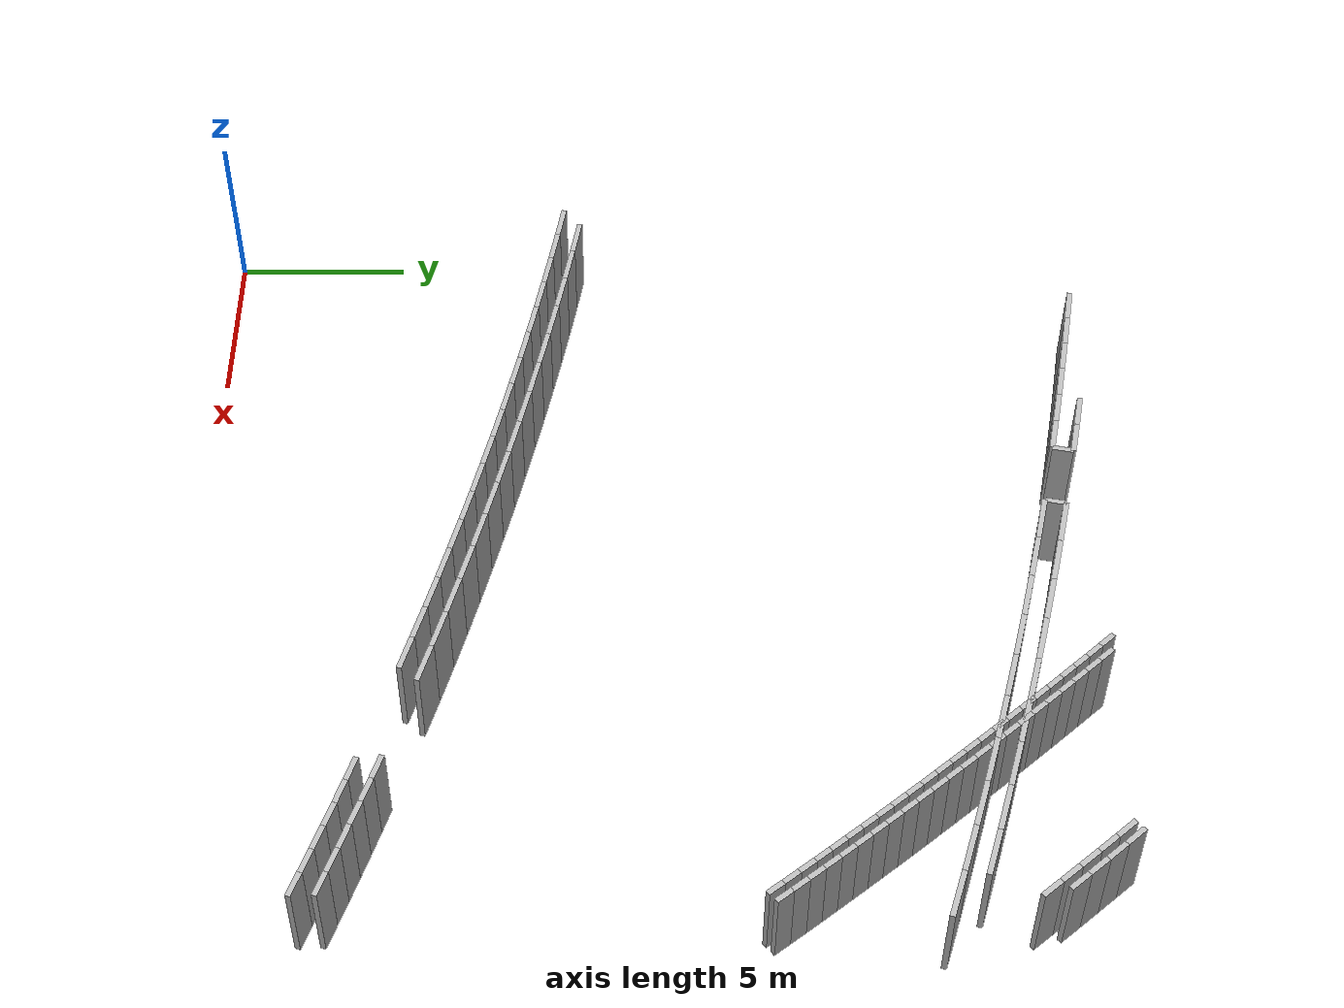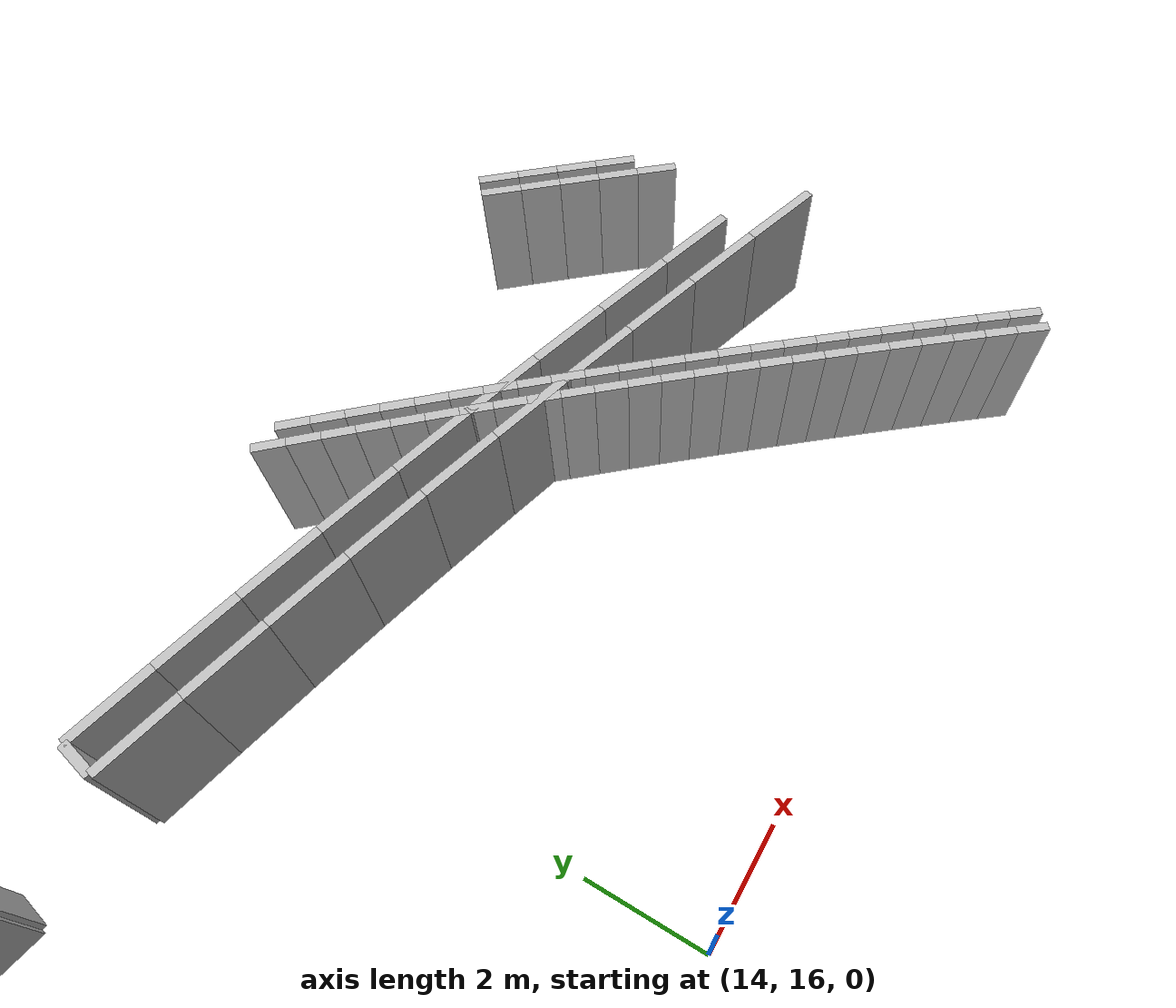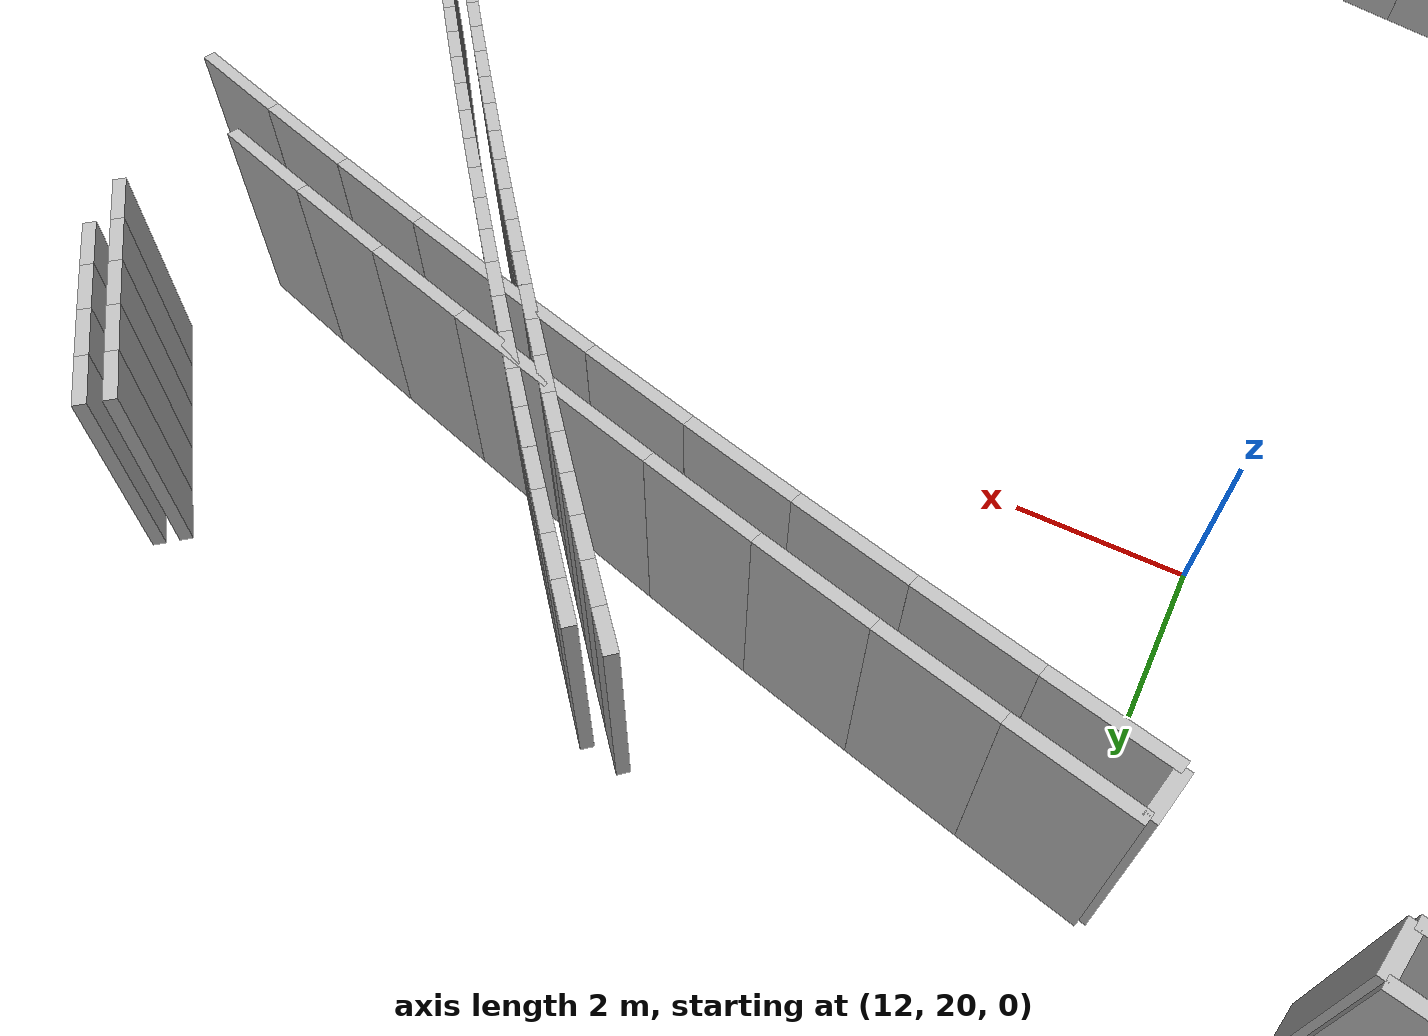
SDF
<sdf version="1.6">
 <model name="sps_0506">
  <static>1</static>
  <allow_auto_disable>0</allow_auto_disable>
  <link name="Wall817">
   <collision name="collision"><geometry><box><size>0.599651 0.15 2.5</size></box></geometry></collision>
   <visual name="visual">
    <geometry><box><size>0.599651 0.15 2.5</size></box></geometry>
    <transparency>0.0</transparency>
   </visual>
   <pose>11.689 24.0409 1.25 0 0 -1.78121</pose>
  </link>
  <link name="Wall1526">
   <collision name="collision"><geometry><box><size>0.600265 0.15 2.5</size></box></geometry></collision>
   <visual name="visual">
    <geometry><box><size>0.600265 0.15 2.5</size></box></geometry>
    <transparency>0.0</transparency>
   </visual>
   <pose>9.73165 24.4502 1.25 0 -0 1.35998</pose>
  </link>
  <link name="Wall6796">
   <collision name="collision"><geometry><box><size>1.19247 0.15 2.5</size></box></geometry></collision>
   <visual name="visual">
    <geometry><box><size>1.19247 0.15 2.5</size></box></geometry>
    <transparency>0.0</transparency>
   </visual>
   <pose>17.3373 6.8047 1.25 0 -0 2.8591</pose>
  </link>
  <link name="Wall6797">
   <collision name="collision"><geometry><box><size>1.19253 0.15 2.5</size></box></geometry></collision>
   <visual name="visual">
    <geometry><box><size>1.19253 0.15 2.5</size></box></geometry>
    <transparency>0.0</transparency>
   </visual>
   <pose>16.1907 7.13231 1.25 0 -0 2.86748</pose>
  </link>
  <link name="Wall6798">
   <collision name="collision"><geometry><box><size>1.19267 0.15 2.5</size></box></geometry></collision>
   <visual name="visual">
    <geometry><box><size>1.19267 0.15 2.5</size></box></geometry>
    <transparency>0.0</transparency>
   </visual>
   <pose>15.0413 7.4503 1.25 0 -0 2.8759</pose>
  </link>
  <link name="Wall6799">
   <collision name="collision"><geometry><box><size>1.19249 0.15 2.5</size></box></geometry></collision>
   <visual name="visual">
    <geometry><box><size>1.19249 0.15 2.5</size></box></geometry>
    <transparency>0.0</transparency>
   </visual>
   <pose>13.8892 7.75868 1.25 0 -0 2.88418</pose>
  </link>
  <link name="Wall6800">
   <collision name="collision"><geometry><box><size>1.19276 0.15 2.5</size></box></geometry></collision>
   <visual name="visual">
    <geometry><box><size>1.19276 0.15 2.5</size></box></geometry>
    <transparency>0.0</transparency>
   </visual>
   <pose>12.7346 8.05739 1.25 0 -0 2.89269</pose>
  </link>
  <link name="Wall6801">
   <collision name="collision"><geometry><box><size>1.19256 0.15 2.5</size></box></geometry></collision>
   <visual name="visual">
    <geometry><box><size>1.19256 0.15 2.5</size></box></geometry>
    <transparency>0.0</transparency>
   </visual>
   <pose>11.5775 8.34639 1.25 0 -0 2.90098</pose>
  </link>
  <link name="Wall6802">
   <collision name="collision"><geometry><box><size>1.19258 0.15 2.5</size></box></geometry></collision>
   <visual name="visual">
    <geometry><box><size>1.19258 0.15 2.5</size></box></geometry>
    <transparency>0.0</transparency>
   </visual>
   <pose>10.4181 8.62569 1.25 0 -0 2.90941</pose>
  </link>
  <link name="Wall6803">
   <collision name="collision"><geometry><box><size>1.1925 0.15 2.5</size></box></geometry></collision>
   <visual name="visual">
    <geometry><box><size>1.1925 0.15 2.5</size></box></geometry>
    <transparency>0.0</transparency>
   </visual>
   <pose>9.25646 8.89519 1.25 0 -0 2.91786</pose>
  </link>
  <link name="Wall6804">
   <collision name="collision"><geometry><box><size>1.19262 0.15 2.5</size></box></geometry></collision>
   <visual name="visual">
    <geometry><box><size>1.19262 0.15 2.5</size></box></geometry>
    <transparency>0.0</transparency>
   </visual>
   <pose>8.09255 9.15498 1.25 0 -0 2.92611</pose>
  </link>
  <link name="Wall6805">
   <collision name="collision"><geometry><box><size>1.19252 0.15 2.5</size></box></geometry></collision>
   <visual name="visual">
    <geometry><box><size>1.19252 0.15 2.5</size></box></geometry>
    <transparency>0.0</transparency>
   </visual>
   <pose>6.92654 9.4052 1.25 0 -0 2.93431</pose>
  </link>
  <link name="Wall6806">
   <collision name="collision"><geometry><box><size>1.19265 0.15 2.5</size></box></geometry></collision>
   <visual name="visual">
    <geometry><box><size>1.19265 0.15 2.5</size></box></geometry>
    <transparency>0.0</transparency>
   </visual>
   <pose>5.75845 9.64561 1.25 0 -0 2.9429</pose>
  </link>
  <link name="Wall6807">
   <collision name="collision"><geometry><box><size>1.19259 0.15 2.5</size></box></geometry></collision>
   <visual name="visual">
    <geometry><box><size>1.19259 0.15 2.5</size></box></geometry>
    <transparency>0.0</transparency>
   </visual>
   <pose>4.58834 9.8762 1.25 0 -0 2.95113</pose>
  </link>
  <link name="Wall6808">
   <collision name="collision"><geometry><box><size>1.19266 0.15 2.5</size></box></geometry></collision>
   <visual name="visual">
    <geometry><box><size>1.19266 0.15 2.5</size></box></geometry>
    <transparency>0.0</transparency>
   </visual>
   <pose>3.41634 10.097 1.25 0 -0 2.95963</pose>
  </link>
  <link name="Wall6809">
   <collision name="collision"><geometry><box><size>1.19252 0.15 2.5</size></box></geometry></collision>
   <visual name="visual">
    <geometry><box><size>1.19252 0.15 2.5</size></box></geometry>
    <transparency>0.0</transparency>
   </visual>
   <pose>2.24255 10.3078 1.25 0 -0 2.96814</pose>
  </link>
  <link name="Wall6810">
   <collision name="collision"><geometry><box><size>1.19264 0.15 2.5</size></box></geometry></collision>
   <visual name="visual">
    <geometry><box><size>1.19264 0.15 2.5</size></box></geometry>
    <transparency>0.0</transparency>
   </visual>
   <pose>1.06704 10.5088 1.25 0 -0 2.97636</pose>
  </link>
  <link name="Wall7026">
   <collision name="collision"><geometry><box><size>0.737285 0.15 2.5</size></box></geometry></collision>
   <visual name="visual">
    <geometry><box><size>0.737285 0.15 2.5</size></box></geometry>
    <transparency>0.0</transparency>
   </visual>
   <pose>24.1517 4.6357 1.25 0 -0 2.80882</pose>
  </link>
  <link name="Wall7027">
   <collision name="collision"><geometry><box><size>0.737195 0.15 2.5</size></box></geometry></collision>
   <visual name="visual">
    <geometry><box><size>0.737195 0.15 2.5</size></box></geometry>
    <transparency>0.0</transparency>
   </visual>
   <pose>23.4542 4.87471 1.25 0 -0 2.81403</pose>
  </link>
  <link name="Wall7028">
   <collision name="collision"><geometry><box><size>0.737202 0.15 2.5</size></box></geometry></collision>
   <visual name="visual">
    <geometry><box><size>0.737202 0.15 2.5</size></box></geometry>
    <transparency>0.0</transparency>
   </visual>
   <pose>22.7556 5.11009 1.25 0 -0 2.81919</pose>
  </link>
  <link name="Wall7029">
   <collision name="collision"><geometry><box><size>0.737288 0.15 2.5</size></box></geometry></collision>
   <visual name="visual">
    <geometry><box><size>0.737288 0.15 2.5</size></box></geometry>
    <transparency>0.0</transparency>
   </visual>
   <pose>22.0557 5.34178 1.25 0 -0 2.82463</pose>
  </link>
  <link name="Wall7030">
   <collision name="collision"><geometry><box><size>0.73741 0.15 2.5</size></box></geometry></collision>
   <visual name="visual">
    <geometry><box><size>0.73741 0.15 2.5</size></box></geometry>
    <transparency>0.0</transparency>
   </visual>
   <pose>21.3546 5.5699 1.25 0 -0 2.82947</pose>
  </link>
  <link name="Wall7031">
   <collision name="collision"><geometry><box><size>0.737402 0.15 2.5</size></box></geometry></collision>
   <visual name="visual">
    <geometry><box><size>0.737402 0.15 2.5</size></box></geometry>
    <transparency>0.0</transparency>
   </visual>
   <pose>20.6522 5.79442 1.25 0 -0 2.83495</pose>
  </link>
  <link name="Wall9447">
   <collision name="collision"><geometry><box><size>1.03454 0.15 2.5</size></box></geometry></collision>
   <visual name="visual">
    <geometry><box><size>1.03454 0.15 2.5</size></box></geometry>
    <transparency>0.0</transparency>
   </visual>
   <pose>9.28735 24.8457 1.25 0 -0 2.94306</pose>
  </link>
  <link name="Wall9448">
   <collision name="collision"><geometry><box><size>1.03453 0.15 2.5</size></box></geometry></collision>
   <visual name="visual">
    <geometry><box><size>1.03453 0.15 2.5</size></box></geometry>
    <transparency>0.0</transparency>
   </visual>
   <pose>8.27245 25.0463 1.25 0 -0 2.9498</pose>
  </link>
  <link name="Wall9459">
   <collision name="collision"><geometry><box><size>1.06457 0.15 2.5</size></box></geometry></collision>
   <visual name="visual">
    <geometry><box><size>1.06457 0.15 2.5</size></box></geometry>
    <transparency>0.0</transparency>
   </visual>
   <pose>16.9885 6.29738 1.25 0 -0 2.86041</pose>
  </link>
  <link name="Wall9460">
   <collision name="collision"><geometry><box><size>1.06461 0.15 2.5</size></box></geometry></collision>
   <visual name="visual">
    <geometry><box><size>1.06461 0.15 2.5</size></box></geometry>
    <transparency>0.0</transparency>
   </visual>
   <pose>15.9646 6.58888 1.25 0 -0 2.86805</pose>
  </link>
  <link name="Wall9461">
   <collision name="collision"><geometry><box><size>1.06441 0.15 2.5</size></box></geometry></collision>
   <visual name="visual">
    <geometry><box><size>1.06441 0.15 2.5</size></box></geometry>
    <transparency>0.0</transparency>
   </visual>
   <pose>14.9386 6.87257 1.25 0 -0 2.87561</pose>
  </link>
  <link name="Wall9462">
   <collision name="collision"><geometry><box><size>1.06444 0.15 2.5</size></box></geometry></collision>
   <visual name="visual">
    <geometry><box><size>1.06444 0.15 2.5</size></box></geometry>
    <transparency>0.0</transparency>
   </visual>
   <pose>13.9106 7.14867 1.25 0 -0 2.8828</pose>
  </link>
  <link name="Wall9463">
   <collision name="collision"><geometry><box><size>1.06461 0.15 2.5</size></box></geometry></collision>
   <visual name="visual">
    <geometry><box><size>1.06461 0.15 2.5</size></box></geometry>
    <transparency>0.0</transparency>
   </visual>
   <pose>12.8805 7.41707 1.25 0 -0 2.89061</pose>
  </link>
  <link name="Wall9464">
   <collision name="collision"><geometry><box><size>1.06437 0.15 2.5</size></box></geometry></collision>
   <visual name="visual">
    <geometry><box><size>1.06437 0.15 2.5</size></box></geometry>
    <transparency>0.0</transparency>
   </visual>
   <pose>11.8483 7.6776 1.25 0 -0 2.89806</pose>
  </link>
  <link name="Wall9465">
   <collision name="collision"><geometry><box><size>1.06456 0.15 2.5</size></box></geometry></collision>
   <visual name="visual">
    <geometry><box><size>1.06456 0.15 2.5</size></box></geometry>
    <transparency>0.0</transparency>
   </visual>
   <pose>10.8144 7.9304 1.25 0 -0 2.90554</pose>
  </link>
  <link name="Wall9466">
   <collision name="collision"><geometry><box><size>1.06449 0.15 2.5</size></box></geometry></collision>
   <visual name="visual">
    <geometry><box><size>1.06449 0.15 2.5</size></box></geometry>
    <transparency>0.0</transparency>
   </visual>
   <pose>9.77843 8.17549 1.25 0 -0 2.91301</pose>
  </link>
  <link name="Wall9467">
   <collision name="collision"><geometry><box><size>1.06448 0.15 2.5</size></box></geometry></collision>
   <visual name="visual">
    <geometry><box><size>1.06448 0.15 2.5</size></box></geometry>
    <transparency>0.0</transparency>
   </visual>
   <pose>8.74074 8.41279 1.25 0 -0 2.92054</pose>
  </link>
  <link name="Wall9468">
   <collision name="collision"><geometry><box><size>1.06458 0.15 2.5</size></box></geometry></collision>
   <visual name="visual">
    <geometry><box><size>1.06458 0.15 2.5</size></box></geometry>
    <transparency>0.0</transparency>
   </visual>
   <pose>7.70126 8.64229 1.25 0 -0 2.92807</pose>
  </link>
  <link name="Wall9469">
   <collision name="collision"><geometry><box><size>1.06452 0.15 2.5</size></box></geometry></collision>
   <visual name="visual">
    <geometry><box><size>1.06452 0.15 2.5</size></box></geometry>
    <transparency>0.0</transparency>
   </visual>
   <pose>6.66006 8.864 1.25 0 -0 2.9355</pose>
  </link>
  <link name="Wall9470">
   <collision name="collision"><geometry><box><size>1.06449 0.15 2.5</size></box></geometry></collision>
   <visual name="visual">
    <geometry><box><size>1.06449 0.15 2.5</size></box></geometry>
    <transparency>0.0</transparency>
   </visual>
   <pose>5.61727 9.0779 1.25 0 -0 2.94305</pose>
  </link>
  <link name="Wall9471">
   <collision name="collision"><geometry><box><size>1.06461 0.15 2.5</size></box></geometry></collision>
   <visual name="visual">
    <geometry><box><size>1.06461 0.15 2.5</size></box></geometry>
    <transparency>0.0</transparency>
   </visual>
   <pose>4.57287 9.28398 1.25 0 -0 2.95049</pose>
  </link>
  <link name="Wall9472">
   <collision name="collision"><geometry><box><size>1.06444 0.15 2.5</size></box></geometry></collision>
   <visual name="visual">
    <geometry><box><size>1.06444 0.15 2.5</size></box></geometry>
    <transparency>0.0</transparency>
   </visual>
   <pose>3.52697 9.48219 1.25 0 -0 2.95811</pose>
  </link>
  <link name="Wall9473">
   <collision name="collision"><geometry><box><size>1.06448 0.15 2.5</size></box></geometry></collision>
   <visual name="visual">
    <geometry><box><size>1.06448 0.15 2.5</size></box></geometry>
    <transparency>0.0</transparency>
   </visual>
   <pose>2.47967 9.6725 1.25 0 -0 2.96558</pose>
  </link>
  <link name="Wall9474">
   <collision name="collision"><geometry><box><size>1.06447 0.15 2.5</size></box></geometry></collision>
   <visual name="visual">
    <geometry><box><size>1.06447 0.15 2.5</size></box></geometry>
    <transparency>0.0</transparency>
   </visual>
   <pose>1.43096 9.85499 1.25 0 -0 2.97302</pose>
  </link>
  <link name="Wall9475">
   <collision name="collision"><geometry><box><size>1.0646 0.15 2.5</size></box></geometry></collision>
   <visual name="visual">
    <geometry><box><size>1.0646 0.15 2.5</size></box></geometry>
    <transparency>0.0</transparency>
   </visual>
   <pose>0.380851 10.0296 1.25 0 -0 2.98066</pose>
  </link>
  <link name="Wall16708">
   <collision name="collision"><geometry><box><size>1.39294 0.15 2.5</size></box></geometry></collision>
   <visual name="visual">
    <geometry><box><size>1.39294 0.15 2.5</size></box></geometry>
    <transparency>0.0</transparency>
   </visual>
   <pose>23.2065 21.3463 1.25 0 -0 2.84917</pose>
  </link>
  <link name="Wall16709">
   <collision name="collision"><geometry><box><size>1.39311 0.15 2.5</size></box></geometry></collision>
   <visual name="visual">
    <geometry><box><size>1.39311 0.15 2.5</size></box></geometry>
    <transparency>0.0</transparency>
   </visual>
   <pose>21.8709 21.7421 1.25 0 -0 2.85784</pose>
  </link>
  <link name="Wall16710">
   <collision name="collision"><geometry><box><size>1.39302 0.15 2.5</size></box></geometry></collision>
   <visual name="visual">
    <geometry><box><size>1.39302 0.15 2.5</size></box></geometry>
    <transparency>0.0</transparency>
   </visual>
   <pose>20.5319 22.1261 1.25 0 -0 2.8668</pose>
  </link>
  <link name="Wall16711">
   <collision name="collision"><geometry><box><size>1.39299 0.15 2.5</size></box></geometry></collision>
   <visual name="visual">
    <geometry><box><size>1.39299 0.15 2.5</size></box></geometry>
    <transparency>0.0</transparency>
   </visual>
   <pose>19.1895 22.4982 1.25 0 -0 2.87557</pose>
  </link>
  <link name="Wall16712">
   <collision name="collision"><geometry><box><size>1.39307 0.15 2.5</size></box></geometry></collision>
   <visual name="visual">
    <geometry><box><size>1.39307 0.15 2.5</size></box></geometry>
    <transparency>0.0</transparency>
   </visual>
   <pose>17.8439 22.8585 1.25 0 -0 2.88434</pose>
  </link>
  <link name="Wall16713">
   <collision name="collision"><geometry><box><size>1.393 0.15 2.5</size></box></geometry></collision>
   <visual name="visual">
    <geometry><box><size>1.393 0.15 2.5</size></box></geometry>
    <transparency>0.0</transparency>
   </visual>
   <pose>16.4951 23.207 1.25 0 -0 2.89311</pose>
  </link>
  <link name="Wall16714">
   <collision name="collision"><geometry><box><size>1.39318 0.15 2.5</size></box></geometry></collision>
   <visual name="visual">
    <geometry><box><size>1.39318 0.15 2.5</size></box></geometry>
    <transparency>0.0</transparency>
   </visual>
   <pose>15.1433 23.5436 1.25 0 -0 2.90203</pose>
  </link>
  <link name="Wall16715">
   <collision name="collision"><geometry><box><size>1.39312 0.15 2.5</size></box></geometry></collision>
   <visual name="visual">
    <geometry><box><size>1.39312 0.15 2.5</size></box></geometry>
    <transparency>0.0</transparency>
   </visual>
   <pose>13.7885 23.8682 1.25 0 -0 2.91085</pose>
  </link>
  <link name="Wall16716">
   <collision name="collision"><geometry><box><size>1.39294 0.15 2.5</size></box></geometry></collision>
   <visual name="visual">
    <geometry><box><size>1.39294 0.15 2.5</size></box></geometry>
    <transparency>0.0</transparency>
   </visual>
   <pose>12.4311 24.1808 1.25 0 -0 2.91963</pose>
  </link>
  <link name="Wall16779">
   <collision name="collision"><geometry><box><size>0.729133 0.15 2.5</size></box></geometry></collision>
   <visual name="visual">
    <geometry><box><size>0.729133 0.15 2.5</size></box></geometry>
    <transparency>0.0</transparency>
   </visual>
   <pose>24.1691 3.9893 1.25 0 -0 2.80735</pose>
  </link>
  <link name="Wall16780">
   <collision name="collision"><geometry><box><size>0.729115 0.15 2.5</size></box></geometry></collision>
   <visual name="visual">
    <geometry><box><size>0.729115 0.15 2.5</size></box></geometry>
    <transparency>0.0</transparency>
   </visual>
   <pose>23.4797 4.2267 1.25 0 -0 2.81256</pose>
  </link>
  <link name="Wall16781">
   <collision name="collision"><geometry><box><size>0.729175 0.15 2.5</size></box></geometry></collision>
   <visual name="visual">
    <geometry><box><size>0.729175 0.15 2.5</size></box></geometry>
    <transparency>0.0</transparency>
   </visual>
   <pose>22.7891 4.46059 1.25 0 -0 2.81754</pose>
  </link>
  <link name="Wall16782">
   <collision name="collision"><geometry><box><size>0.729156 0.15 2.5</size></box></geometry></collision>
   <visual name="visual">
    <geometry><box><size>0.729156 0.15 2.5</size></box></geometry>
    <transparency>0.0</transparency>
   </visual>
   <pose>22.0973 4.69099 1.25 0 -0 2.82265</pose>
  </link>
  <link name="Wall16783">
   <collision name="collision"><geometry><box><size>0.729178 0.15 2.5</size></box></geometry></collision>
   <visual name="visual">
    <geometry><box><size>0.729178 0.15 2.5</size></box></geometry>
    <transparency>0.0</transparency>
   </visual>
   <pose>21.4043 4.9178 1.25 0 -0 2.82794</pose>
  </link>
  <link name="Wall16784">
   <collision name="collision"><geometry><box><size>0.729256 0.15 2.5</size></box></geometry></collision>
   <visual name="visual">
    <geometry><box><size>0.729256 0.15 2.5</size></box></geometry>
    <transparency>0.0</transparency>
   </visual>
   <pose>20.71 5.14101 1.25 0 -0 2.83308</pose>
  </link>
  <link name="Wall19208">
   <collision name="collision"><geometry><box><size>0.516532 0.15 2.5</size></box></geometry></collision>
   <visual name="visual">
    <geometry><box><size>0.516532 0.15 2.5</size></box></geometry>
    <transparency>0.0</transparency>
   </visual>
   <pose>24.2566 15.8601 1.25 0 -0 2.23744</pose>
  </link>
  <link name="Wall19209">
   <collision name="collision"><geometry><box><size>0.516979 0.15 2.5</size></box></geometry></collision>
   <visual name="visual">
    <geometry><box><size>0.516979 0.15 2.5</size></box></geometry>
    <transparency>0.0</transparency>
   </visual>
   <pose>23.9364 16.2657 1.25 0 -0 2.24082</pose>
  </link>
  <link name="Wall19210">
   <collision name="collision"><geometry><box><size>0.516745 0.15 2.5</size></box></geometry></collision>
   <visual name="visual">
    <geometry><box><size>0.516745 0.15 2.5</size></box></geometry>
    <transparency>0.0</transparency>
   </visual>
   <pose>23.6147 16.6703 1.25 0 -0 2.24404</pose>
  </link>
  <link name="Wall19211">
   <collision name="collision"><geometry><box><size>0.516564 0.15 2.5</size></box></geometry></collision>
   <visual name="visual">
    <geometry><box><size>0.516564 0.15 2.5</size></box></geometry>
    <transparency>0.0</transparency>
   </visual>
   <pose>23.292 17.0737 1.25 0 -0 2.2472</pose>
  </link>
  <link name="Wall19212">
   <collision name="collision"><geometry><box><size>0.516675 0.15 2.5</size></box></geometry></collision>
   <visual name="visual">
    <geometry><box><size>0.516675 0.15 2.5</size></box></geometry>
    <transparency>0.0</transparency>
   </visual>
   <pose>22.9679 17.476 1.25 0 -0 2.25067</pose>
  </link>
  <link name="Wall19213">
   <collision name="collision"><geometry><box><size>0.516916 0.15 2.5</size></box></geometry></collision>
   <visual name="visual">
    <geometry><box><size>0.516916 0.15 2.5</size></box></geometry>
    <transparency>0.0</transparency>
   </visual>
   <pose>22.6422 17.8773 1.25 0 -0 2.25424</pose>
  </link>
  <link name="Wall19214">
   <collision name="collision"><geometry><box><size>0.516705 0.15 2.5</size></box></geometry></collision>
   <visual name="visual">
    <geometry><box><size>0.516705 0.15 2.5</size></box></geometry>
    <transparency>0.0</transparency>
   </visual>
   <pose>22.3152 18.2775 1.25 0 -0 2.25747</pose>
  </link>
  <link name="Wall19215">
   <collision name="collision"><geometry><box><size>0.516795 0.15 2.5</size></box></geometry></collision>
   <visual name="visual">
    <geometry><box><size>0.516795 0.15 2.5</size></box></geometry>
    <transparency>0.0</transparency>
   </visual>
   <pose>21.987 18.6766 1.25 0 -0 2.26085</pose>
  </link>
  <link name="Wall19216">
   <collision name="collision"><geometry><box><size>0.516837 0.15 2.5</size></box></geometry></collision>
   <visual name="visual">
    <geometry><box><size>0.516837 0.15 2.5</size></box></geometry>
    <transparency>0.0</transparency>
   </visual>
   <pose>21.6572 19.0746 1.25 0 -0 2.26446</pose>
  </link>
  <link name="Wall19217">
   <collision name="collision"><geometry><box><size>0.51665 0.15 2.5</size></box></geometry></collision>
   <visual name="visual">
    <geometry><box><size>0.51665 0.15 2.5</size></box></geometry>
    <transparency>0.0</transparency>
   </visual>
   <pose>21.3263 19.4714 1.25 0 -0 2.26753</pose>
  </link>
  <link name="Wall19218">
   <collision name="collision"><geometry><box><size>0.516797 0.15 2.5</size></box></geometry></collision>
   <visual name="visual">
    <geometry><box><size>0.516797 0.15 2.5</size></box></geometry>
    <transparency>0.0</transparency>
   </visual>
   <pose>20.994 19.8671 1.25 0 -0 2.27099</pose>
  </link>
  <link name="Wall19219">
   <collision name="collision"><geometry><box><size>0.516653 0.15 2.5</size></box></geometry></collision>
   <visual name="visual">
    <geometry><box><size>0.516653 0.15 2.5</size></box></geometry>
    <transparency>0.0</transparency>
   </visual>
   <pose>20.6604 20.2617 1.25 0 -0 2.27432</pose>
  </link>
  <link name="Wall19220">
   <collision name="collision"><geometry><box><size>0.516938 0.15 2.5</size></box></geometry></collision>
   <visual name="visual">
    <geometry><box><size>0.516938 0.15 2.5</size></box></geometry>
    <transparency>0.0</transparency>
   </visual>
   <pose>20.3253 20.6552 1.25 0 -0 2.27789</pose>
  </link>
  <link name="Wall19221">
   <collision name="collision"><geometry><box><size>0.516647 0.15 2.5</size></box></geometry></collision>
   <visual name="visual">
    <geometry><box><size>0.516647 0.15 2.5</size></box></geometry>
    <transparency>0.0</transparency>
   </visual>
   <pose>19.989 21.0476 1.25 0 -0 2.28086</pose>
  </link>
  <link name="Wall19222">
   <collision name="collision"><geometry><box><size>0.516806 0.15 2.5</size></box></geometry></collision>
   <visual name="visual">
    <geometry><box><size>0.516806 0.15 2.5</size></box></geometry>
    <transparency>0.0</transparency>
   </visual>
   <pose>19.6515 21.4388 1.25 0 -0 2.28465</pose>
  </link>
  <link name="Wall19223">
   <collision name="collision"><geometry><box><size>0.516565 0.15 2.5</size></box></geometry></collision>
   <visual name="visual">
    <geometry><box><size>0.516565 0.15 2.5</size></box></geometry>
    <transparency>0.0</transparency>
   </visual>
   <pose>19.3126 21.8288 1.25 0 -0 2.28771</pose>
  </link>
  <link name="Wall19224">
   <collision name="collision"><geometry><box><size>0.516829 0.15 2.5</size></box></geometry></collision>
   <visual name="visual">
    <geometry><box><size>0.516829 0.15 2.5</size></box></geometry>
    <transparency>0.0</transparency>
   </visual>
   <pose>18.9723 22.2177 1.25 0 -0 2.29135</pose>
  </link>
  <link name="Wall19225">
   <collision name="collision"><geometry><box><size>0.516862 0.15 2.5</size></box></geometry></collision>
   <visual name="visual">
    <geometry><box><size>0.516862 0.15 2.5</size></box></geometry>
    <transparency>0.0</transparency>
   </visual>
   <pose>18.6308 22.6056 1.25 0 -0 2.29428</pose>
  </link>
  <link name="Wall19226">
   <collision name="collision"><geometry><box><size>0.516708 0.15 2.5</size></box></geometry></collision>
   <visual name="visual">
    <geometry><box><size>0.516708 0.15 2.5</size></box></geometry>
    <transparency>0.0</transparency>
   </visual>
   <pose>18.288 22.9923 1.25 0 -0 2.29786</pose>
  </link>
  <link name="Wall19227">
   <collision name="collision"><geometry><box><size>0.516782 0.15 2.5</size></box></geometry></collision>
   <visual name="visual">
    <geometry><box><size>0.516782 0.15 2.5</size></box></geometry>
    <transparency>0.0</transparency>
   </visual>
   <pose>17.9438 23.3778 1.25 0 -0 2.30121</pose>
  </link>
  <link name="Wall19228">
   <collision name="collision"><geometry><box><size>0.516722 0.15 2.5</size></box></geometry></collision>
   <visual name="visual">
    <geometry><box><size>0.516722 0.15 2.5</size></box></geometry>
    <transparency>0.0</transparency>
   </visual>
   <pose>17.5983 23.7621 1.25 0 -0 2.30497</pose>
  </link>
  <link name="Wall19229">
   <collision name="collision"><geometry><box><size>0.516953 0.15 2.5</size></box></geometry></collision>
   <visual name="visual">
    <geometry><box><size>0.516953 0.15 2.5</size></box></geometry>
    <transparency>0.0</transparency>
   </visual>
   <pose>17.2515 24.1453 1.25 0 -0 2.30775</pose>
  </link>
  <link name="Wall19230">
   <collision name="collision"><geometry><box><size>0.516696 0.15 2.5</size></box></geometry></collision>
   <visual name="visual">
    <geometry><box><size>0.516696 0.15 2.5</size></box></geometry>
    <transparency>0.0</transparency>
   </visual>
   <pose>16.9036 24.5274 1.25 0 -0 2.31124</pose>
  </link>
  <link name="Wall19231">
   <collision name="collision"><geometry><box><size>0.516621 0.15 2.5</size></box></geometry></collision>
   <visual name="visual">
    <geometry><box><size>0.516621 0.15 2.5</size></box></geometry>
    <transparency>0.0</transparency>
   </visual>
   <pose>16.5544 24.9082 1.25 0 -0 2.31458</pose>
  </link>
  <link name="Wall21171">
   <collision name="collision"><geometry><box><size>1.39266 0.15 2.5</size></box></geometry></collision>
   <visual name="visual">
    <geometry><box><size>1.39266 0.15 2.5</size></box></geometry>
    <transparency>0.0</transparency>
   </visual>
   <pose>24.409 20.3511 1.25 0 -0 2.84008</pose>
  </link>
  <link name="Wall21172">
   <collision name="collision"><geometry><box><size>1.39249 0.15 2.5</size></box></geometry></collision>
   <visual name="visual">
    <geometry><box><size>1.39249 0.15 2.5</size></box></geometry>
    <transparency>0.0</transparency>
   </visual>
   <pose>23.0774 20.7589 1.25 0 -0 2.8487</pose>
  </link>
  <link name="Wall21173">
   <collision name="collision"><geometry><box><size>1.39275 0.15 2.5</size></box></geometry></collision>
   <visual name="visual">
    <geometry><box><size>1.39275 0.15 2.5</size></box></geometry>
    <transparency>0.0</transparency>
   </visual>
   <pose>21.7424 21.155 1.25 0 -0 2.85763</pose>
  </link>
  <link name="Wall21174">
   <collision name="collision"><geometry><box><size>1.39254 0.15 2.5</size></box></geometry></collision>
   <visual name="visual">
    <geometry><box><size>1.39254 0.15 2.5</size></box></geometry>
    <transparency>0.0</transparency>
   </visual>
   <pose>20.4038 21.5392 1.25 0 -0 2.86657</pose>
  </link>
  <link name="Wall21175">
   <collision name="collision"><geometry><box><size>1.39269 0.15 2.5</size></box></geometry></collision>
   <visual name="visual">
    <geometry><box><size>1.39269 0.15 2.5</size></box></geometry>
    <transparency>0.0</transparency>
   </visual>
   <pose>19.0619 21.9115 1.25 0 -0 2.87538</pose>
  </link>
  <link name="Wall21176">
   <collision name="collision"><geometry><box><size>1.3927 0.15 2.5</size></box></geometry></collision>
   <visual name="visual">
    <geometry><box><size>1.3927 0.15 2.5</size></box></geometry>
    <transparency>0.0</transparency>
   </visual>
   <pose>17.7166 22.272 1.25 0 -0 2.88414</pose>
  </link>
  <link name="Wall21177">
   <collision name="collision"><geometry><box><size>1.39259 0.15 2.5</size></box></geometry></collision>
   <visual name="visual">
    <geometry><box><size>1.39259 0.15 2.5</size></box></geometry>
    <transparency>0.0</transparency>
   </visual>
   <pose>16.3683 22.6206 1.25 0 -0 2.89303</pose>
  </link>
  <link name="Wall21178">
   <collision name="collision"><geometry><box><size>1.3926 0.15 2.5</size></box></geometry></collision>
   <visual name="visual">
    <geometry><box><size>1.3926 0.15 2.5</size></box></geometry>
    <transparency>0.0</transparency>
   </visual>
   <pose>15.0171 22.9572 1.25 0 -0 2.90189</pose>
  </link>
  <link name="Wall21179">
   <collision name="collision"><geometry><box><size>1.39271 0.15 2.5</size></box></geometry></collision>
   <visual name="visual">
    <geometry><box><size>1.39271 0.15 2.5</size></box></geometry>
    <transparency>0.0</transparency>
   </visual>
   <pose>13.6628 23.2818 1.25 0 -0 2.91078</pose>
  </link>
  <link name="Wall21180">
   <collision name="collision"><geometry><box><size>1.39262 0.15 2.5</size></box></geometry></collision>
   <visual name="visual">
    <geometry><box><size>1.39262 0.15 2.5</size></box></geometry>
    <transparency>0.0</transparency>
   </visual>
   <pose>12.3057 23.5944 1.25 0 -0 2.91963</pose>
  </link>
  <link name="Wall24887">
   <collision name="collision"><geometry><box><size>0.523255 0.15 2.5</size></box></geometry></collision>
   <visual name="visual">
    <geometry><box><size>0.523255 0.15 2.5</size></box></geometry>
    <transparency>0.0</transparency>
   </visual>
   <pose>24.4776 16.0646 1.25 0 -0 2.23698</pose>
  </link>
  <link name="Wall24888">
   <collision name="collision"><geometry><box><size>0.523252 0.15 2.5</size></box></geometry></collision>
   <visual name="visual">
    <geometry><box><size>0.523252 0.15 2.5</size></box></geometry>
    <transparency>0.0</transparency>
   </visual>
   <pose>24.1535 16.4754 1.25 0 -0 2.24055</pose>
  </link>
  <link name="Wall24889">
   <collision name="collision"><geometry><box><size>0.523131 0.15 2.5</size></box></geometry></collision>
   <visual name="visual">
    <geometry><box><size>0.523131 0.15 2.5</size></box></geometry>
    <transparency>0.0</transparency>
   </visual>
   <pose>23.828 16.885 1.25 0 -0 2.24401</pose>
  </link>
  <link name="Wall24890">
   <collision name="collision"><geometry><box><size>0.523094 0.15 2.5</size></box></geometry></collision>
   <visual name="visual">
    <geometry><box><size>0.523094 0.15 2.5</size></box></geometry>
    <transparency>0.0</transparency>
   </visual>
   <pose>23.5011 17.2934 1.25 0 -0 2.24765</pose>
  </link>
  <link name="Wall24891">
   <collision name="collision"><geometry><box><size>0.523061 0.15 2.5</size></box></geometry></collision>
   <visual name="visual">
    <geometry><box><size>0.523061 0.15 2.5</size></box></geometry>
    <transparency>0.0</transparency>
   </visual>
   <pose>23.1728 17.7007 1.25 0 -0 2.25055</pose>
  </link>
  <link name="Wall24892">
   <collision name="collision"><geometry><box><size>0.523302 0.15 2.5</size></box></geometry></collision>
   <visual name="visual">
    <geometry><box><size>0.523302 0.15 2.5</size></box></geometry>
    <transparency>0.0</transparency>
   </visual>
   <pose>22.8433 18.107 1.25 0 -0 2.25408</pose>
  </link>
  <link name="Wall24893">
   <collision name="collision"><geometry><box><size>0.523245 0.15 2.5</size></box></geometry></collision>
   <visual name="visual">
    <geometry><box><size>0.523245 0.15 2.5</size></box></geometry>
    <transparency>0.0</transparency>
   </visual>
   <pose>22.5122 18.5122 1.25 0 -0 2.25763</pose>
  </link>
  <link name="Wall24894">
   <collision name="collision"><geometry><box><size>0.523078 0.15 2.5</size></box></geometry></collision>
   <visual name="visual">
    <geometry><box><size>0.523078 0.15 2.5</size></box></geometry>
    <transparency>0.0</transparency>
   </visual>
   <pose>22.1798 18.9162 1.25 0 -0 2.26092</pose>
  </link>
  <link name="Wall24895">
   <collision name="collision"><geometry><box><size>0.523339 0.15 2.5</size></box></geometry></collision>
   <visual name="visual">
    <geometry><box><size>0.523339 0.15 2.5</size></box></geometry>
    <transparency>0.0</transparency>
   </visual>
   <pose>21.846 19.3191 1.25 0 -0 2.26444</pose>
  </link>
  <link name="Wall24896">
   <collision name="collision"><geometry><box><size>0.523043 0.15 2.5</size></box></geometry></collision>
   <visual name="visual">
    <geometry><box><size>0.523043 0.15 2.5</size></box></geometry>
    <transparency>0.0</transparency>
   </visual>
   <pose>21.5108 19.7208 1.25 0 -0 2.26796</pose>
  </link>
  <link name="Wall24897">
   <collision name="collision"><geometry><box><size>0.523198 0.15 2.5</size></box></geometry></collision>
   <visual name="visual">
    <geometry><box><size>0.523198 0.15 2.5</size></box></geometry>
    <transparency>0.0</transparency>
   </visual>
   <pose>21.1742 20.1213 1.25 0 -0 2.27121</pose>
  </link>
  <link name="Wall24898">
   <collision name="collision"><geometry><box><size>0.523133 0.15 2.5</size></box></geometry></collision>
   <visual name="visual">
    <geometry><box><size>0.523133 0.15 2.5</size></box></geometry>
    <transparency>0.0</transparency>
   </visual>
   <pose>20.8364 20.5207 1.25 0 -0 2.27468</pose>
  </link>
  <link name="Wall24899">
   <collision name="collision"><geometry><box><size>0.523294 0.15 2.5</size></box></geometry></collision>
   <visual name="visual">
    <geometry><box><size>0.523294 0.15 2.5</size></box></geometry>
    <transparency>0.0</transparency>
   </visual>
   <pose>20.4971 20.919 1.25 0 -0 2.27809</pose>
  </link>
  <link name="Wall24900">
   <collision name="collision"><geometry><box><size>0.523149 0.15 2.5</size></box></geometry></collision>
   <visual name="visual">
    <geometry><box><size>0.523149 0.15 2.5</size></box></geometry>
    <transparency>0.0</transparency>
   </visual>
   <pose>20.1564 21.3161 1.25 0 -0 2.28171</pose>
  </link>
  <link name="Wall24901">
   <collision name="collision"><geometry><box><size>0.523202 0.15 2.5</size></box></geometry></collision>
   <visual name="visual">
    <geometry><box><size>0.523202 0.15 2.5</size></box></geometry>
    <transparency>0.0</transparency>
   </visual>
   <pose>19.8144 21.712 1.25 0 -0 2.28486</pose>
  </link>
  <link name="Wall24902">
   <collision name="collision"><geometry><box><size>0.523208 0.15 2.5</size></box></geometry></collision>
   <visual name="visual">
    <geometry><box><size>0.523208 0.15 2.5</size></box></geometry>
    <transparency>0.0</transparency>
   </visual>
   <pose>19.471 22.1068 1.25 0 -0 2.28825</pose>
  </link>
  <link name="Wall24903">
   <collision name="collision"><geometry><box><size>0.523053 0.15 2.5</size></box></geometry></collision>
   <visual name="visual">
    <geometry><box><size>0.523053 0.15 2.5</size></box></geometry>
    <transparency>0.0</transparency>
   </visual>
   <pose>19.1265 22.5004 1.25 0 -0 2.29146</pose>
  </link>
  <link name="Wall24904">
   <collision name="collision"><geometry><box><size>0.523227 0.15 2.5</size></box></geometry></collision>
   <visual name="visual">
    <geometry><box><size>0.523227 0.15 2.5</size></box></geometry>
    <transparency>0.0</transparency>
   </visual>
   <pose>18.7805 22.8928 1.25 0 -0 2.29537</pose>
  </link>
  <link name="Wall24905">
   <collision name="collision"><geometry><box><size>0.523171 0.15 2.5</size></box></geometry></collision>
   <visual name="visual">
    <geometry><box><size>0.523171 0.15 2.5</size></box></geometry>
    <transparency>0.0</transparency>
   </visual>
   <pose>18.4331 23.284 1.25 0 -0 2.29858</pose>
  </link>
  <link name="Wall24906">
   <collision name="collision"><geometry><box><size>0.523151 0.15 2.5</size></box></geometry></collision>
   <visual name="visual">
    <geometry><box><size>0.523151 0.15 2.5</size></box></geometry>
    <transparency>0.0</transparency>
   </visual>
   <pose>18.0843 23.674 1.25 0 -0 2.30222</pose>
  </link>
  <link name="Wall24907">
   <collision name="collision"><geometry><box><size>0.52311 0.15 2.5</size></box></geometry></collision>
   <visual name="visual">
    <geometry><box><size>0.52311 0.15 2.5</size></box></geometry>
    <transparency>0.0</transparency>
   </visual>
   <pose>17.7343 24.0628 1.25 0 -0 2.30527</pose>
  </link>
  <link name="Wall24908">
   <collision name="collision"><geometry><box><size>0.523161 0.15 2.5</size></box></geometry></collision>
   <visual name="visual">
    <geometry><box><size>0.523161 0.15 2.5</size></box></geometry>
    <transparency>0.0</transparency>
   </visual>
   <pose>17.3831 24.4505 1.25 0 -0 2.30833</pose>
  </link>
  <link name="Wall24909">
   <collision name="collision"><geometry><box><size>0.523193 0.15 2.5</size></box></geometry></collision>
   <visual name="visual">
    <geometry><box><size>0.523193 0.15 2.5</size></box></geometry>
    <transparency>0.0</transparency>
   </visual>
   <pose>17.0305 24.837 1.25 0 -0 2.31238</pose>
  </link>
  <link name="Wall24951">
   <collision name="collision"><geometry><box><size>0.673767 0.15 2.5</size></box></geometry></collision>
   <visual name="visual">
    <geometry><box><size>0.673767 0.15 2.5</size></box></geometry>
    <transparency>0.0</transparency>
   </visual>
   <pose>24.2573 22.6717 1.25 0 -0 2.27109</pose>
  </link>
  <link name="Wall24952">
   <collision name="collision"><geometry><box><size>0.673577 0.15 2.5</size></box></geometry></collision>
   <visual name="visual">
    <geometry><box><size>0.673577 0.15 2.5</size></box></geometry>
    <transparency>0.0</transparency>
   </visual>
   <pose>23.8221 23.1859 1.25 0 -0 2.27525</pose>
  </link>
  <link name="Wall24953">
   <collision name="collision"><geometry><box><size>0.673525 0.15 2.5</size></box></geometry></collision>
   <visual name="visual">
    <geometry><box><size>0.673525 0.15 2.5</size></box></geometry>
    <transparency>0.0</transparency>
   </visual>
   <pose>23.3848 23.6982 1.25 0 -0 2.27948</pose>
  </link>
  <link name="Wall24954">
   <collision name="collision"><geometry><box><size>0.673638 0.15 2.5</size></box></geometry></collision>
   <visual name="visual">
    <geometry><box><size>0.673638 0.15 2.5</size></box></geometry>
    <transparency>0.0</transparency>
   </visual>
   <pose>22.9453 24.2086 1.25 0 -0 2.28412</pose>
  </link>
  <link name="Wall24955">
   <collision name="collision"><geometry><box><size>0.673623 0.15 2.5</size></box></geometry></collision>
   <visual name="visual">
    <geometry><box><size>0.673623 0.15 2.5</size></box></geometry>
    <transparency>0.0</transparency>
   </visual>
   <pose>22.5035 24.7171 1.25 0 -0 2.2881</pose>
  </link>
  <link name="Wall25009">
   <collision name="collision"><geometry><box><size>0.674975 0.15 2.5</size></box></geometry></collision>
   <visual name="visual">
    <geometry><box><size>0.674975 0.15 2.5</size></box></geometry>
    <transparency>0.0</transparency>
   </visual>
   <pose>24.0515 23.3805 1.25 0 -0 2.27503</pose>
  </link>
  <link name="Wall25010">
   <collision name="collision"><geometry><box><size>0.674829 0.15 2.5</size></box></geometry></collision>
   <visual name="visual">
    <geometry><box><size>0.674829 0.15 2.5</size></box></geometry>
    <transparency>0.0</transparency>
   </visual>
   <pose>23.6135 23.8939 1.25 0 -0 2.27937</pose>
  </link>
  <link name="Wall25011">
   <collision name="collision"><geometry><box><size>0.674961 0.15 2.5</size></box></geometry></collision>
   <visual name="visual">
    <geometry><box><size>0.674961 0.15 2.5</size></box></geometry>
    <transparency>0.0</transparency>
   </visual>
   <pose>23.1732 24.4054 1.25 0 -0 2.28362</pose>
  </link>
  <link name="Wall25012">
   <collision name="collision"><geometry><box><size>0.674995 0.15 2.5</size></box></geometry></collision>
   <visual name="visual">
    <geometry><box><size>0.674995 0.15 2.5</size></box></geometry>
    <transparency>0.0</transparency>
   </visual>
   <pose>22.7306 24.915 1.25 0 -0 2.28837</pose>
  </link>
  <link name="Wall27762">
   <collision name="collision"><geometry><box><size>1.05184 0.15 2.5</size></box></geometry></collision>
   <visual name="visual">
    <geometry><box><size>1.05184 0.15 2.5</size></box></geometry>
    <transparency>0.0</transparency>
   </visual>
   <pose>9.15325 24.2604 1.25 0 -0 2.94312</pose>
  </link>
  <link name="Wall27763">
   <collision name="collision"><geometry><box><size>1.05168 0.15 2.5</size></box></geometry></collision>
   <visual name="visual">
    <geometry><box><size>1.05168 0.15 2.5</size></box></geometry>
    <transparency>0.0</transparency>
   </visual>
   <pose>8.12145 24.4643 1.25 0 -0 2.94989</pose>
  </link>
  <link name="Wall27764">
   <collision name="collision"><geometry><box><size>1.05175 0.15 2.5</size></box></geometry></collision>
   <visual name="visual">
    <geometry><box><size>1.05175 0.15 2.5</size></box></geometry>
    <transparency>0.0</transparency>
   </visual>
   <pose>7.08834 24.6612 1.25 0 -0 2.95664</pose>
  </link>
  <link name="Wall27765">
   <collision name="collision"><geometry><box><size>1.05164 0.15 2.5</size></box></geometry></collision>
   <visual name="visual">
    <geometry><box><size>1.05164 0.15 2.5</size></box></geometry>
    <transparency>0.0</transparency>
   </visual>
   <pose>6.05425 24.8528 1.25 0 -0 2.9601</pose>
  </link>
  <link name="Wall27766">
   <collision name="collision"><geometry><box><size>1.05187 0.15 2.5</size></box></geometry></collision>
   <visual name="visual">
    <geometry><box><size>1.05187 0.15 2.5</size></box></geometry>
    <transparency>0.0</transparency>
   </visual>
   <pose>5.01916 25.0392 1.25 0 -0 2.96674</pose>
  </link>
  <link name="Wall27767">
   <collision name="collision"><geometry><box><size>1.05182 0.15 2.5</size></box></geometry></collision>
   <visual name="visual">
    <geometry><box><size>1.05182 0.15 2.5</size></box></geometry>
    <transparency>0.0</transparency>
   </visual>
   <pose>3.98275 25.2187 1.25 0 -0 2.97345</pose>
  </link>
 </model>
</sdf>
